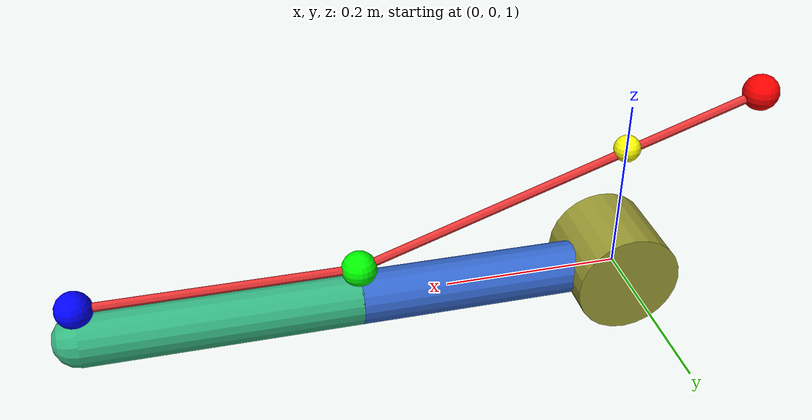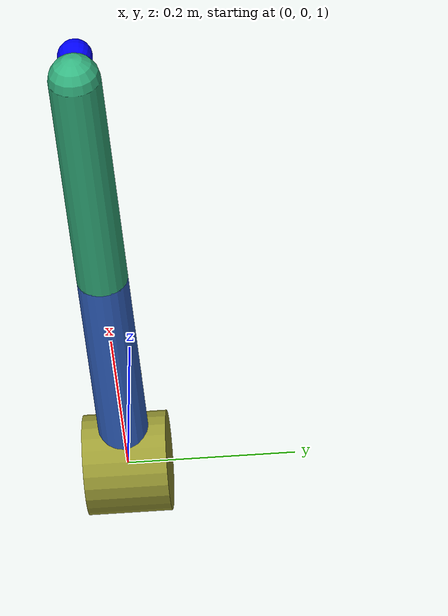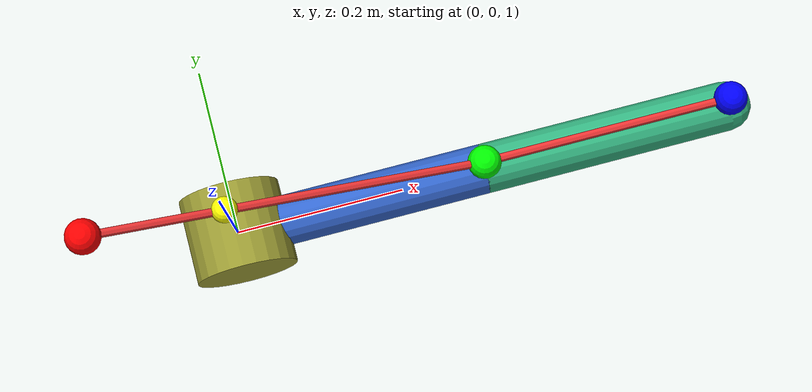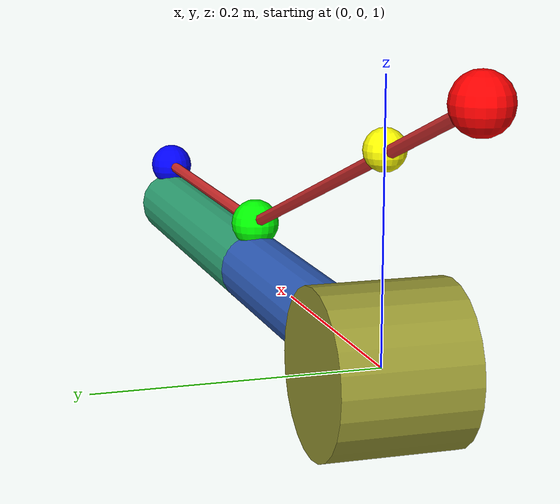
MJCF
<mujoco model="tendon_arm">
  <compiler angle="radian"/>
  <option timestep="0.005" gravity="0 0 -9.81"/>

  <worldbody>
    <site name="anchor" pos="-0.15 0 1.2" size="0.02" rgba="1 0 0 1"/>
    <geom name="pulley" type="cylinder" pos="0 0 1.0" size="0.06 0.05" euler="1.5708 0 0" rgba="0.6 0.6 0.2 1"
          contype="0" conaffinity="0"/>
    <!-- Sidesite pins the wrap to the top (+z) side of the pulley (MuJoCo's stateless side selection), so the tendon
         does not flip to the shortest-path side as the arm swings. -->
    <site name="pulley_top" pos="0 0 1.15" size="0.015" rgba="1 1 0 1"/>

    <body name="upper" pos="0 0 1.0">
      <joint name="shoulder" type="hinge" axis="0 1 0" range="-2.0 2.0"/>
      <geom type="capsule" fromto="0 0 0 0.3 0 0" size="0.03" mass="0.4" rgba="0.2 0.4 0.8 1"/>
      <site name="mid" pos="0.3 0 0.04" size="0.02" rgba="0 1 0 1"/>
      <body name="fore" pos="0.3 0 0">
        <joint name="elbow" type="hinge" axis="0 1 0" range="-2.0 2.0"/>
        <geom type="capsule" fromto="0 0 0 0.3 0 0" size="0.03" mass="0.3" rgba="0.2 0.7 0.5 1"/>
        <site name="tip" pos="0.3 0 0.04" size="0.02" rgba="0 0 1 1"/>
      </body>
    </body>
  </worldbody>

  <tendon>
    <!-- Spatial actuation tendon: anchor -> wrap over the cylinder pulley (pinned to the top via sidesite) -> tip. -->
    <spatial name="flexor" width="0.005" rgba="0.9 0.2 0.2 1">
      <site site="anchor"/>
      <geom geom="pulley" sidesite="pulley_top"/>
      <site site="mid"/>
      <site site="tip"/>
    </spatial>
    <!-- Fixed coupling tendon so the two joints share load (illustrative). -->
    <fixed name="couple" stiffness="5" damping="0.5">
      <joint joint="shoulder" coef="1"/>
      <joint joint="elbow" coef="-1"/>
    </fixed>
  </tendon>

  <actuator>
    <position name="flex" tendon="flexor" kp="40"/>
  </actuator>
</mujoco>
